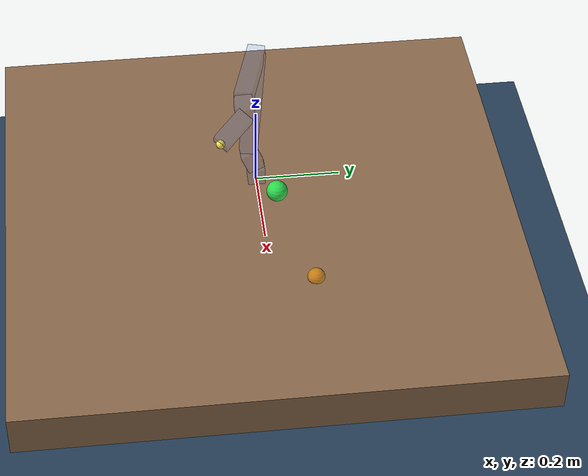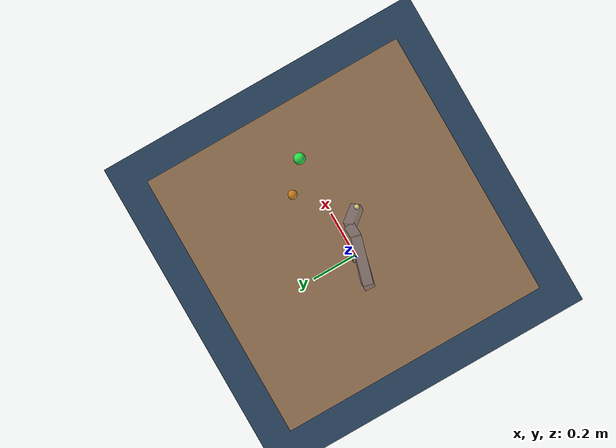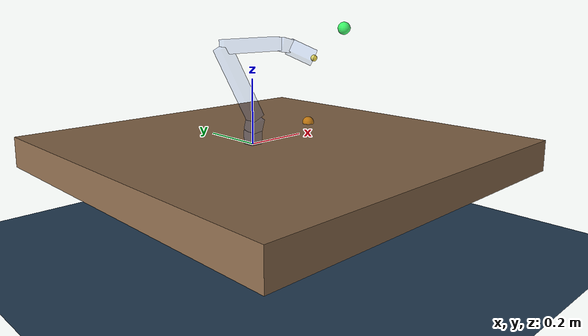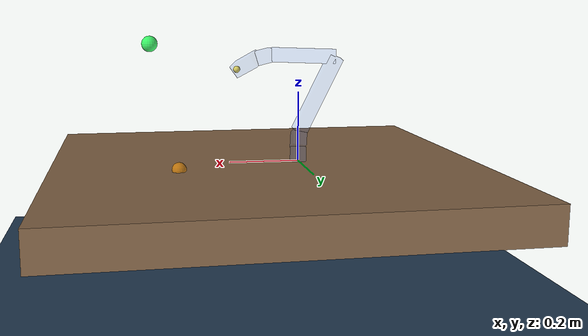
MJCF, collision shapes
<mujoco model="talking_lamp_world">
  <!-- Talking Lamp motion-dev scene: LeLamp 5-axis arm welded to a desk. -->
  <include file="lelamp_arm.xml"/>

  <option timestep="0.002" integrator="implicitfast"/>
  <!-- 500 Hz physics; motion team targets a 100 Hz trajectory generator on top -->

  <visual>
    <headlight diffuse="0.6 0.6 0.6" ambient="0.35 0.35 0.35" specular="0 0 0"/>
    <rgba haze="0.15 0.25 0.35 1"/>
    <global azimuth="150" elevation="-20" offwidth="1280" offheight="960"/>
  </visual>

  <asset>
    <texture type="skybox" builtin="gradient" rgb1="0.3 0.5 0.7" rgb2="0 0 0" width="512" height="3072"/>
    <texture type="2d" name="groundplane" builtin="checker" mark="edge"
             rgb1="0.2 0.3 0.4" rgb2="0.1 0.2 0.3" markrgb="0.8 0.8 0.8" width="300" height="300"/>
    <material name="groundplane" texture="groundplane" texuniform="true" texrepeat="5 5" reflectance="0.1"/>
    <material name="desk" rgba="0.55 0.42 0.30 1"/>
    <material name="target" rgba="0.15 1 0.35 0.85" emission="0.5"/>
  </asset>

  <worldbody>
    <light pos="0 0 3" dir="0 0 -1" directional="true"/>
    <geom name="floor" size="0 0 0.05" pos="0 0 -0.35" type="plane" material="groundplane"/>
    <!-- desk surface: top face at world z = 0, which is the lamp base origin -->
    <geom name="desk" type="box" size="0.6 0.6 0.05" pos="0.1 0 -0.05" material="desk"/>

    <!-- example work target (a book on the desk) - move at runtime for S1 tests -->
    <site name="work_target" pos="0.35 0.10 0.005" size="0.02" rgba="1 0.6 0 0.6"/>

    <!-- draggable target for sim/drive.py: double-click then Ctrl+drag in the
         viewer. Kinematic (mocap), no collision, does not add to qpos. -->
    <body name="target" mocap="true" pos="0.42 0.0 0.34">
      <geom type="sphere" size="0.022" material="target" contype="0" conaffinity="0" group="0"/>
    </body>

    <camera name="closeup" pos="0.55 -0.5 0.45" xyaxes="0.7 0.7 0 -0.25 0.25 0.94"/>
  </worldbody>

  <keyframe>
    <!-- Relaxed operating home followed by the measured calibration reference. -->
    <key name="home" qpos="0.2617993877991494 0.07629817559829882 -0.04058412526635097 0 0.9402527974893196"/>
    <key name="calibration_straight" qpos="0 -0.4473006 -1.9953528875 0 0.73081328725"/>
  </keyframe>
</mujoco>

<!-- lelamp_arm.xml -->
<!-- GENERATED by sim/build_arm.py - serial-chain rebuild of the LeLamp arm.
     Kinematics from LeLamp/simulation/robot.xml home pose; do not edit by hand. -->
<mujoco model="lelamp_arm">
  <compiler angle="radian" meshdir="../LeLamp/simulation/assets" autolimits="true"/>
  <default>
    <default class="sts3215">
      <!-- damping/frictionloss/armature from the vendored STS3215 class;
           kp/kv bumped for a usable position-hold at 12 V (retune vs real servo) -->
      <joint damping="0.60" frictionloss="0.052" armature="0.028"/>
      <position kp="120" kv="8" forcerange="-6.0 6.0"/>
    </default>
    <default class="visual">
      <geom type="mesh" contype="0" conaffinity="0" group="2" mass="0"/>
    </default>
    <default class="proxy">
      <!-- inertia only: consecutive links share endpoints so their boxes
           overlap; enabling contact would weld the arm. Add real collision
           geometry from CAD later. -->
      <geom type="box" group="3" contype="0" conaffinity="0" rgba="0.3 0.5 0.9 0.12"/>
    </default>
  </default>
  <asset>
    <mesh name="diffuser" file="diffuser.stl"/>
    <mesh name="lamp_base" file="lamp_base.stl"/>
    <mesh name="lamp_base_cover" file="lamp_base_cover.stl"/>
    <mesh name="lamparm__base_elbow" file="lamparm__base_elbow.stl"/>
    <mesh name="lamparm__elbow_wrist" file="lamparm__elbow_wrist.stl"/>
    <mesh name="lamparm__wrist_head" file="lamparm__wrist_head.stl"/>
    <mesh name="lamphead" file="lamphead.stl"/>
  </asset>
  <worldbody>
    <body name="base" pos="0 0 0" quat="0 0 0 1" childclass="sts3215">
    <geom class="visual" mesh="lamp_base" pos="-0.0125 -5.80402e-08 0.004" quat="-0.707107 1.88573e-15 2.01032e-15 0.707107"/>
    <geom class="visual" mesh="lamp_base_cover" pos="-0.0125 -5.80402e-08 0.004" quat="-0.707107 2.23617e-15 2.09625e-15 0.707107"/>
    <geom class="proxy" size="0.02 0.02 0.0209" pos="1.04223e-08 -1.61264e-08 0.0209" quat="1 3.85798e-07 2.49337e-07 -9.61938e-14" mass="0.41735"/>
      <body name="base_yaw" pos="2.08446e-08 -3.22527e-08 0.0418">
        <joint name="base_yaw" axis="0 0 1" range="-1.60454 1.48489" class="sts3215"/>
        <geom class="proxy" size="0.02 0.02 0.0226863" pos="0.00291616 0.00914637 0.020555" quat="0.976123 -0.205491 0.0688969 0.014504" mass="0.0953804"/>
        <body name="base_pitch" pos="0.00583232 0.0182927 0.04111">
          <joint name="base_pitch" axis="0.303767 0.952746 1.11022e-16" range="-2.12087 1.15264" class="sts3215"/>
          <geom class="visual" mesh="lamparm__base_elbow" pos="0.0625479 -0.0178432 0.109691" quat="0.149185 0.238014 -0.0370254 0.959021"/>
          <geom class="proxy" size="0.02 0.02 0.121078" pos="0.0499868 -0.0156358 0.109163" quat="0.974992 0.0632192 0.212613 -0.013786" mass="0.234138"/>
          <body name="elbow_pitch" pos="0.0999737 -0.0312716 0.218327">
            <joint name="elbow_pitch" axis="-0.303768 -0.952746 7.4896e-07" range="-2.8866 0.541851" class="sts3215"/>
            <geom class="visual" mesh="lamparm__elbow_wrist" pos="-0.095267 -0.0108223 -0.00419458" quat="0.706592 -0.107449 -0.690725 -0.109917"/>
            <geom class="proxy" size="0.02 0.02 0.0926431" pos="-0.0891247 0.0252016 0.00210262" quat="0.70862 -0.098235 -0.6921 -0.0959448" mass="0.206448"/>
            <body name="wrist_roll" pos="-0.178249 0.0504033 0.00420524">
              <joint name="wrist_roll" axis="0.9525 -0.30369 -0.0227083" range="-1.57847 1.59534" class="sts3215"/>
              <geom class="visual" mesh="lamparm__wrist_head" pos="0 2.77556e-17 0" quat="-0.635336 -0.11699 0.689173 0.32818"/>
              <geom class="proxy" size="0.02 0.02 0.0226863" pos="-0.0220339 -0.00102699 -0.00530284" quat="0.618717 0.0140116 -0.785288 0.0177838" mass="0.0953804"/>
              <body name="wrist_pitch" pos="-0.0440678 -0.00205398 -0.0106057">
                <joint name="wrist_pitch" axis="0.255757 0.757223 0.601001" range="-0.947362 2.5041" class="sts3215"/>
                <geom class="visual" mesh="diffuser" pos="0.00851598 0.0312435 0.0223189" quat="-0.868359 -0.348362 -0.352934 0.00567674"/>
                <geom class="visual" mesh="lamphead" pos="0.00851598 0.0312435 0.0223189" quat="-0.868359 -0.348362 -0.352934 0.00567674"/>
                <geom class="proxy" size="0.02 0.02 0.0430994" pos="-0.0245778 0.0306541 -0.0177149" quat="-0.420478 0.175614 0.821384 0.343053" mass="0.0933113"/>
                <site name="head" pos="-0.0491556 0.0613081 -0.0354299" size="0.01" rgba="1 0.9 0.3 1"/>
                </body>
              </body>
            </body>
          </body>
        </body>
      </body>
  </worldbody>
  <actuator>
    <position class="sts3215" name="base_yaw" joint="base_yaw" inheritrange="1"/>
    <position class="sts3215" name="base_pitch" joint="base_pitch" inheritrange="1"/>
    <position class="sts3215" name="elbow_pitch" joint="elbow_pitch" inheritrange="1"/>
    <position class="sts3215" name="wrist_roll" joint="wrist_roll" inheritrange="1"/>
    <position class="sts3215" name="wrist_pitch" joint="wrist_pitch" inheritrange="1"/>
  </actuator>
</mujoco>
